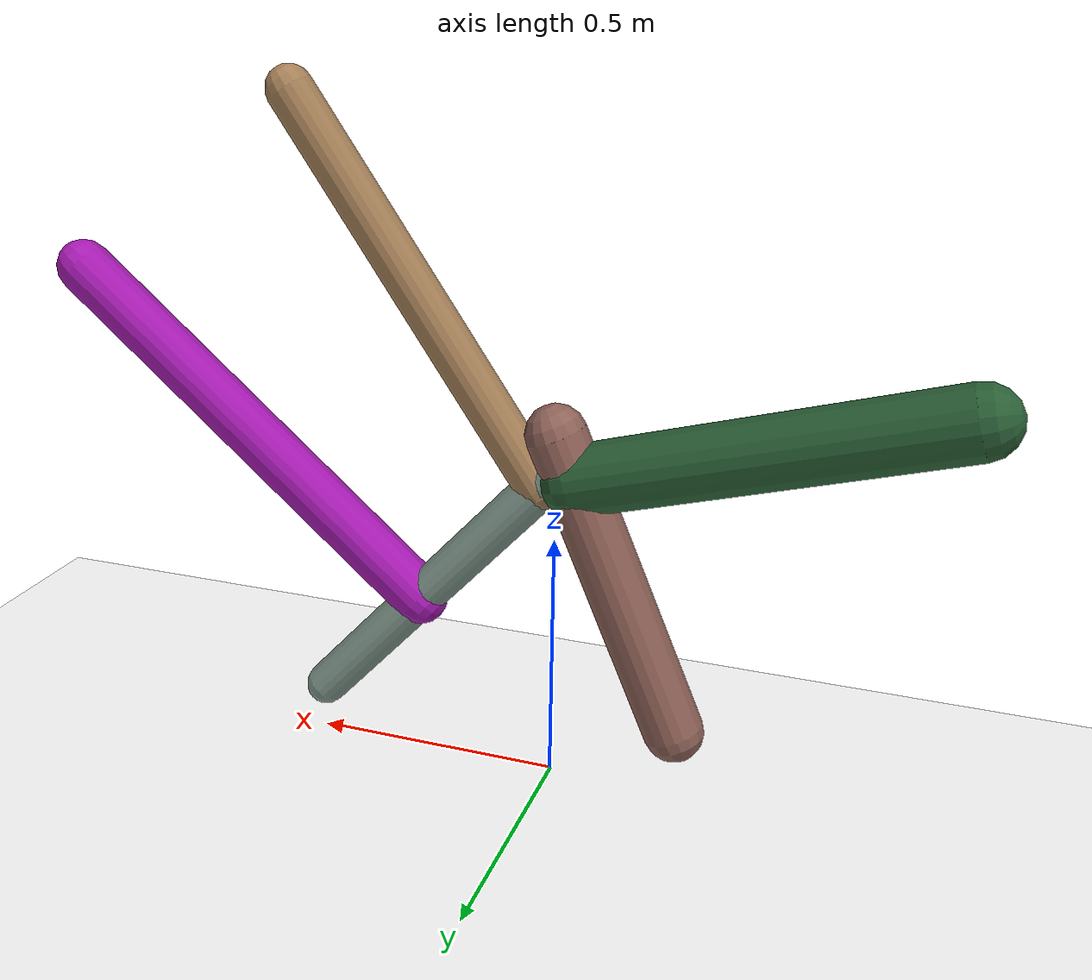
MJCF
<mujoco model="morphology">
  <option timestep="0.01"/>
  <default>
    <default class="/"/>
    <default class="0/"/>
    <default class="0/1/"/>
    <default class="0/2/"/>
    <default class="0/2/3/"/>
    <default class="0/2/4/"/>
  </default>
  <asset>
    <texture name="texplane" type="2d" builtin="checker" rgb1="0.10000000000000001 0.20000000000000001 0.29999999999999999" rgb2="0.20000000000000001 0.29999999999999999 0.40000000000000002" width="300" height="300"/>
    <material name="MatPlane" class="/" texture="texplane" texrepeat="20 20" specular="1" shininess="1" reflectance="0.5"/>
  </asset>
  <worldbody>
    <light name="//unnamed_light_0" class="/" directional="true" pos="0 0 1.5" dir="0 0 -1.3" cutoff="100" exponent="1" diffuse="1 1 1" specular="0.10000000000000001 0.10000000000000001 0.10000000000000001"/>
    <geom name="ground" class="/" type="plane" size="15 15 0.5" material="MatPlane" rgba="1 1 1 1"/>
    <site name="body" class="/" size="9.9999999999999995e-07 9.9999999999999995e-07 9.9999999999999995e-07" pos="0 0 0.71180949211120603"/>
    <body pos="0 0 0.71180949211120603" name="0/">
      <joint name="0/rootx/" class="/" type="slide" axis="1 0 0" limited="false" stiffness="0" armature="0" damping="0"/>
      <joint name="0/rootz/" class="/" type="slide" axis="0 0 1" limited="false" stiffness="0" armature="0" damping="0"/>
      <joint name="0/rooty/" class="/" type="hinge" axis="0 1 0" limited="false" stiffness="0" armature="0" damping="0"/>
      <geom name="0/geom" class="0/" type="capsule" contype="1" conaffinity="1" condim="3" size="0.059072031557350475" rgba="0.55674305374786459 0.38389772160271929 0.34285758787406817 1" friction="0.59999999999999998 0.10000000000000001 0.10000000000000001" fromto="0 0 0 -0.24656026235875228 0 -0.57514965936099705"/>
      <site name="0/end0" class="0/" size="0.0050000000000000001" pos="-0.24656026235875228 0 -0.57514965936099705"/>
      <site name="0/attach1" class="0/" size="9.9999999999999995e-07 9.9999999999999995e-07 9.9999999999999995e-07" pos="-0.036929880456465905 0 -0.086146112766028751"/>
      <body pos="-0.036929880456465905 0 -0.086146112766028751" name="0/1/">
        <joint name="0/1/joint/" class="0/" type="hinge" axis="0 1 0" limited="true" range="-40.100608550130808 40.100608550130808"/>
        <geom name="0/1/geom" class="0/1/" type="capsule" contype="1" conaffinity="1" condim="3" size="0.067989572606779181" rgba="0.15946462023454222 0.3654611719998786 0.2043328751976734 1" friction="0.59999999999999998 0.10000000000000001 0.10000000000000001" fromto="0 0 0 -0.69297952038996047 0 0.19612297519673616"/>
        <site name="0/1/end1" class="0/1/" size="0.0050000000000000001" pos="-0.69297952038996047 0 0.19612297519673616"/>
      </body>
      <site name="0/attach2" class="0/" size="9.9999999999999995e-07 9.9999999999999995e-07 9.9999999999999995e-07" pos="-0.021665150792213508 0 -0.050538168555383636"/>
      <body pos="-0.021665150792213508 0 -0.050538168555383636" name="0/2/">
        <joint name="0/2/joint/" class="0/" type="hinge" axis="0 1 0" limited="true" range="-54.440178417147251 54.440178417147251"/>
        <geom name="0/2/geom" class="0/2/" type="capsule" contype="1" conaffinity="1" condim="3" size="0.04276712194629171" rgba="0.51418414512952604 0.60635846290571571 0.56130560328656776 1" friction="0.59999999999999998 0.10000000000000001 0.10000000000000001" fromto="0 0 0 0.51564801837879815 0 -0.56127133581429023"/>
        <site name="0/2/end2" class="0/2/" size="0.0050000000000000001" pos="0.51564801837879815 0 -0.56127133581429023"/>
        <site name="0/2/attach3" class="0/2/" size="9.9999999999999995e-07 9.9999999999999995e-07 9.9999999999999995e-07" pos="0.052602538711791429 0 -0.057256686960253884"/>
        <body pos="0.052602538711791429 0 -0.057256686960253884" name="0/2/3/">
          <joint name="0/2/3/joint/" class="0/2/" type="hinge" axis="0 1 0" limited="true" range="-65.078440352506874 65.078440352506874"/>
          <geom name="0/2/3/geom" class="0/2/3/" type="capsule" contype="1" conaffinity="1" condim="3" size="0.045018555940516541" rgba="0.65001772890118825 0.5045710294174458 0.34514770407662099 1" friction="0.59999999999999998 0.10000000000000001 0.10000000000000001" fromto="0 0 0 0.48017227072188184 0 0.70250987504698581"/>
          <site name="0/2/3/end3" class="0/2/3/" size="0.0050000000000000001" pos="0.48017227072188184 0 0.70250987504698581"/>
        </body>
        <site name="0/2/attach4" class="0/2/" size="9.9999999999999995e-07 9.9999999999999995e-07 9.9999999999999995e-07" pos="0.29757366000110297 0 -0.32390227383608966"/>
        <body pos="0.29757366000110297 0 -0.32390227383608966" name="0/2/4/">
          <joint name="0/2/4/joint/" class="0/2/" type="hinge" axis="0 1 0" limited="true" range="-41.690751069750831 41.690751069750831"/>
          <geom name="0/2/4/geom" class="0/2/4/" type="capsule" contype="1" conaffinity="1" condim="3" size="0.054353937201125975" rgba="0.64970224325865455 0.099255236660018897 0.6977240132855913 1" friction="0.59999999999999998 0.10000000000000001 0.10000000000000001" fromto="0 0 0 0.71443755153838229 0 0.61114267632381325"/>
          <site name="0/2/4/end4" class="0/2/4/" size="0.0050000000000000001" pos="0.71443755153838229 0 0.61114267632381325"/>
        </body>
      </body>
      <camera name="0/side" class="0/" mode="trackcom" pos="0.40000000000000002 -4 0.20000000000000001" quat="0.70699999999999996 0.70699999999999996 0 0"/>
    </body>
  </worldbody>
  <actuator>
    <motor name="0/1/motor" class="0/1/" ctrllimited="true" ctrlrange="-1 1" gear="70" joint="0/1/joint/"/>
    <motor name="0/2/motor" class="0/2/" ctrllimited="true" ctrlrange="-1 1" gear="56" joint="0/2/joint/"/>
    <motor name="0/2/3/motor" class="0/2/3/" ctrllimited="true" ctrlrange="-1 1" gear="72" joint="0/2/3/joint/"/>
    <motor name="0/2/4/motor" class="0/2/4/" ctrllimited="true" ctrlrange="-1 1" gear="59" joint="0/2/4/joint/"/>
  </actuator>
  <sensor>
    <subtreelinvel name="velocity" body="0/"/>
  </sensor>
</mujoco>
